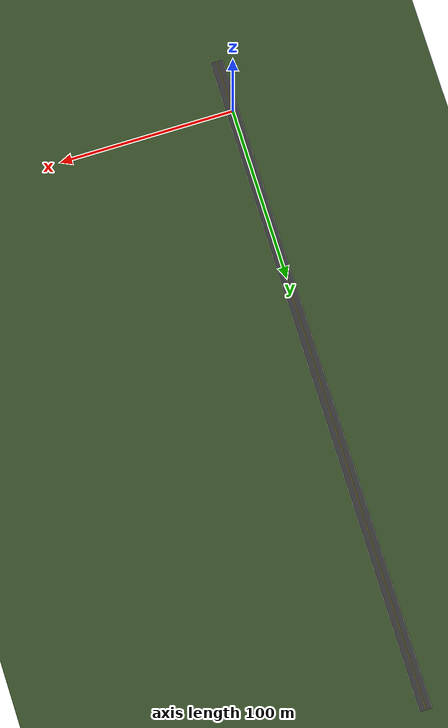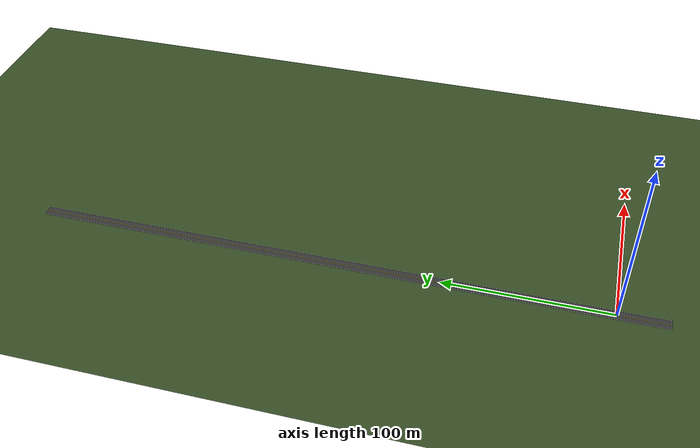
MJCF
<mujoco>

  <statistic center="0 125 0" extent="200" meansize="1.0"/>

  <visual>
    <headlight diffuse="0.6 0.6 0.6" ambient="0.3 0.3 0.3" specular="0 0 0"/>
    <rgba haze="0.15 0.25 0.35 1"/>
    <global azimuth="-20" elevation="-20" ellipsoidinertia="true"/>
  </visual>

  <asset>
    <texture type="skybox" builtin="gradient" rgb1="0.3 0.5 0.7" rgb2="0 0 0"
             width="512" height="3072"/>
    <texture type="2d" name="groundplane" builtin="checker" mark="edge"
             rgb1="0.22 0.32 0.16" rgb2="0.18 0.26 0.12"
             markrgb="0.28 0.38 0.20" width="300" height="300"/>
    <material name="groundplane" texture="groundplane" texuniform="true"
              texrepeat="25 25" reflectance="0.05"/>
    <material name="road"           rgba="0.20 0.20 0.20 1"/>
    <material name="marking_white"  rgba="1.00 1.00 1.00 1"/>
    <material name="marking_yellow" rgba="1.00 0.85 0.00 1"/>
  </asset>

  <worldbody>
    <light pos="0 150 40" dir="0 0 -1" directional="true"
           diffuse="0.8 0.8 0.8" ambient="0.4 0.4 0.4"/>

    <!-- Floor: contype=3 so it collides with both Ego (type=1) and GVT/SOV (type=2) -->
    <geom name="floor" size="0 0 0.05" type="plane" material="groundplane"
          contype="3" conaffinity="3"/>

    <geom name="road" type="box" pos="0 160 0.001" size="3.5 190 0.001"
          material="road" contype="0" conaffinity="0"/>

    <!-- Edge lines (solid white, 0.2 m wide) -->
    <geom name="edge_east" type="box" pos=" 3.5 160 0.002" size="0.1 190 0.001"
          material="marking_white" contype="0" conaffinity="0"/>
    <geom name="edge_west" type="box" pos="-3.5 160 0.002" size="0.1 190 0.001"
          material="marking_white" contype="0" conaffinity="0"/>

    <!-- Centre divider (solid yellow — separates opposing traffic) -->
    <geom name="centre_divider" type="box" pos="0 160 0.002" size="0.1 190 0.001"
          material="marking_yellow" contype="0" conaffinity="0"/>

    <!-- Ego: northbound right lane, heading north -->
    <frame name="spawn_ego" pos="1.75 0 0"   euler="0 0 90"/>

    <!-- GVT: southbound left lane, heading south, far north -->
    <frame name="spawn_gvt" pos="-1.75 250 0" euler="0 0 -90"/>

    <!-- SOV: southbound left lane, heading south, 24 m ahead of GVT -->
    <frame name="spawn_sov" pos="-1.75 226 0" euler="0 0 -90"/>

  </worldbody>

</mujoco>
